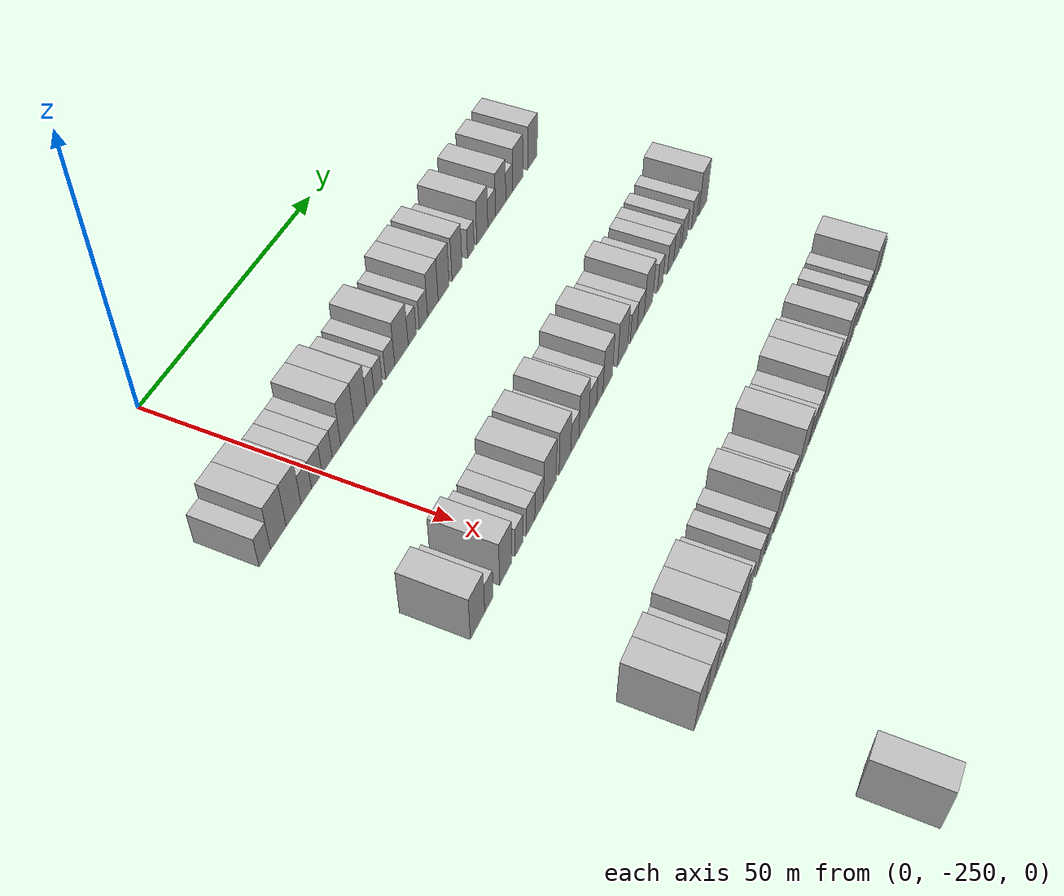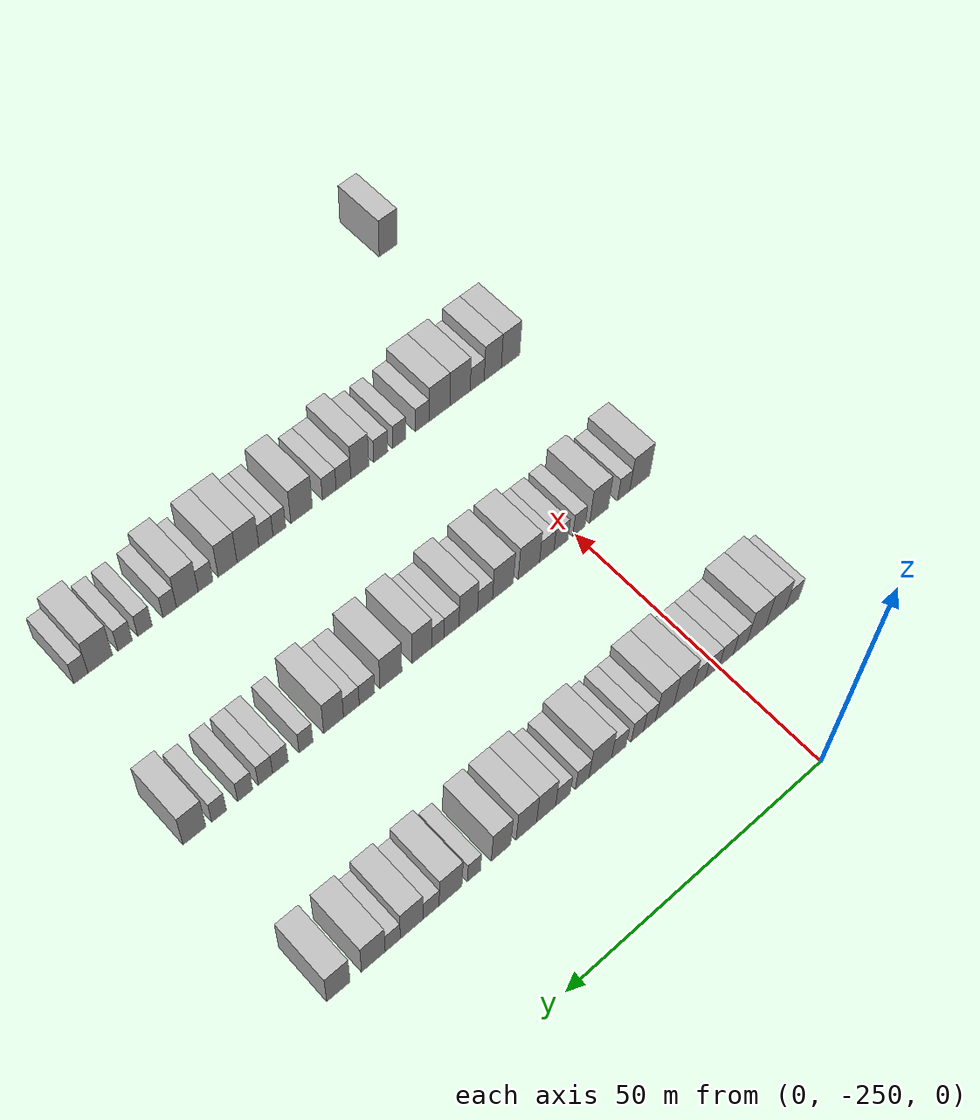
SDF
<sdf version="1.6">
 <world name="default">
  <model name="building_50">
   <static>1</static>
   <pose>25.0000 -265.4910 0 0.000000 0.000000 0.000000</pose>
   <link name="link">
    <pose>0 0 3.00 0 0 0</pose>
    <collision name="collision"><geometry><box><size>10.0000 2.9887 6.0000</size></box></geometry></collision>
    <visual name="visual">
     <cast_shadows>0</cast_shadows>
     <geometry><box><size>10.0000 2.9887 6.0000</size></box></geometry>
     <material>
      <script>
       <uri>model://HANNAS_wall/materials/scripts</uri>
       <uri>model://HANNAS_wall/materials/textures</uri>
       <name>vrc/HANNAS_wall</name>
      </script>
     </material>
    </visual>
   </link>
  </model>
  <model name="building_51">
   <static>1</static>
   <pose>25.0000 -261.9447 0 0.000000 0.000000 0.000000</pose>
   <link name="link">
    <pose>0 0 4.50 0 0 0</pose>
    <collision name="collision"><geometry><box><size>10.0000 4.1038 9.0000</size></box></geometry></collision>
    <visual name="visual">
     <cast_shadows>0</cast_shadows>
     <geometry><box><size>10.0000 4.1038 9.0000</size></box></geometry>
     <material>
      <script>
       <uri>model://HANNAS_wall/materials/scripts</uri>
       <uri>model://HANNAS_wall/materials/textures</uri>
       <name>vrc/HANNAS_wall</name>
      </script>
     </material>
    </visual>
   </link>
  </model>
  <model name="building_52">
   <static>1</static>
   <pose>25.0000 -257.8860 0 0.000000 0.000000 0.000000</pose>
   <link name="link">
    <pose>0 0 4.50 0 0 0</pose>
    <collision name="collision"><geometry><box><size>10.0000 4.0135 9.0000</size></box></geometry></collision>
    <visual name="visual">
     <cast_shadows>0</cast_shadows>
     <geometry><box><size>10.0000 4.0135 9.0000</size></box></geometry>
     <material>
      <script>
       <uri>model://HANNAS_wall/materials/scripts</uri>
       <uri>model://HANNAS_wall/materials/textures</uri>
       <name>vrc/HANNAS_wall</name>
      </script>
     </material>
    </visual>
   </link>
  </model>
  <model name="building_53">
   <static>1</static>
   <pose>25.0000 -254.4358 0 0.000000 0.000000 0.000000</pose>
   <link name="link">
    <pose>0 0 3.00 0 0 0</pose>
    <collision name="collision"><geometry><box><size>10.0000 2.8871 6.0000</size></box></geometry></collision>
    <visual name="visual">
     <cast_shadows>0</cast_shadows>
     <geometry><box><size>10.0000 2.8871 6.0000</size></box></geometry>
     <material>
      <script>
       <uri>model://HANNAS_wall/materials/scripts</uri>
       <uri>model://HANNAS_wall/materials/textures</uri>
       <name>vrc/HANNAS_wall</name>
      </script>
     </material>
    </visual>
   </link>
  </model>
  <model name="building_54">
   <static>1</static>
   <pose>25.0000 -251.5019 0 0.000000 0.000000 0.000000</pose>
   <link name="link">
    <pose>0 0 3.00 0 0 0</pose>
    <collision name="collision"><geometry><box><size>10.0000 2.9807 6.0000</size></box></geometry></collision>
    <visual name="visual">
     <cast_shadows>0</cast_shadows>
     <geometry><box><size>10.0000 2.9807 6.0000</size></box></geometry>
     <material>
      <script>
       <uri>model://HANNAS_wall/materials/scripts</uri>
       <uri>model://HANNAS_wall/materials/textures</uri>
       <name>vrc/HANNAS_wall</name>
      </script>
     </material>
    </visual>
   </link>
  </model>
  <model name="building_55">
   <static>1</static>
   <pose>25.0000 -248.5604 0 0.000000 0.000000 0.000000</pose>
   <link name="link">
    <pose>0 0 3.00 0 0 0</pose>
    <collision name="collision"><geometry><box><size>10.0000 2.9022 6.0000</size></box></geometry></collision>
    <visual name="visual">
     <cast_shadows>0</cast_shadows>
     <geometry><box><size>10.0000 2.9022 6.0000</size></box></geometry>
     <material>
      <script>
       <uri>model://HANNAS_wall/materials/scripts</uri>
       <uri>model://HANNAS_wall/materials/textures</uri>
       <name>vrc/HANNAS_wall</name>
      </script>
     </material>
    </visual>
   </link>
  </model>
  <model name="building_56">
   <static>1</static>
   <pose>25.0000 -245.8790 0 0.000000 0.000000 0.000000</pose>
   <link name="link">
    <pose>0 0 3.00 0 0 0</pose>
    <collision name="collision"><geometry><box><size>10.0000 2.4605 6.0000</size></box></geometry></collision>
    <visual name="visual">
     <cast_shadows>0</cast_shadows>
     <geometry><box><size>10.0000 2.4605 6.0000</size></box></geometry>
     <material>
      <script>
       <uri>model://HANNAS_wall/materials/scripts</uri>
       <uri>model://HANNAS_wall/materials/textures</uri>
       <name>vrc/HANNAS_wall</name>
      </script>
     </material>
    </visual>
   </link>
  </model>
  <model name="building_57">
   <static>1</static>
   <pose>25.0000 -242.6390 0 0.000000 0.000000 0.000000</pose>
   <link name="link">
    <pose>0 0 4.50 0 0 0</pose>
    <collision name="collision"><geometry><box><size>10.0000 4.0194 9.0000</size></box></geometry></collision>
    <visual name="visual">
     <cast_shadows>0</cast_shadows>
     <geometry><box><size>10.0000 4.0194 9.0000</size></box></geometry>
     <material>
      <script>
       <uri>model://HANNAS_wall/materials/scripts</uri>
       <uri>model://HANNAS_wall/materials/textures</uri>
       <name>vrc/HANNAS_wall</name>
      </script>
     </material>
    </visual>
   </link>
  </model>
  <model name="building_58">
   <static>1</static>
   <pose>25.0000 -238.7617 0 0.000000 0.000000 0.000000</pose>
   <link name="link">
    <pose>0 0 4.50 0 0 0</pose>
    <collision name="collision"><geometry><box><size>10.0000 3.7353 9.0000</size></box></geometry></collision>
    <visual name="visual">
     <cast_shadows>0</cast_shadows>
     <geometry><box><size>10.0000 3.7353 9.0000</size></box></geometry>
     <material>
      <script>
       <uri>model://HANNAS_wall/materials/scripts</uri>
       <uri>model://HANNAS_wall/materials/textures</uri>
       <name>vrc/HANNAS_wall</name>
      </script>
     </material>
    </visual>
   </link>
  </model>
  <model name="building_59">
   <static>1</static>
   <pose>25.0000 -235.6898 0 0.000000 0.000000 0.000000</pose>
   <link name="link">
    <pose>0 0 3.00 0 0 0</pose>
    <collision name="collision"><geometry><box><size>10.0000 2.4084 6.0000</size></box></geometry></collision>
    <visual name="visual">
     <cast_shadows>0</cast_shadows>
     <geometry><box><size>10.0000 2.4084 6.0000</size></box></geometry>
     <material>
      <script>
       <uri>model://HANNAS_wall/materials/scripts</uri>
       <uri>model://HANNAS_wall/materials/textures</uri>
       <name>vrc/HANNAS_wall</name>
      </script>
     </material>
    </visual>
   </link>
  </model>
  <model name="building_60">
   <static>1</static>
   <pose>25.0000 -233.2368 0 0.000000 0.000000 0.000000</pose>
   <link name="link">
    <pose>0 0 3.00 0 0 0</pose>
    <collision name="collision"><geometry><box><size>10.0000 2.4976 6.0000</size></box></geometry></collision>
    <visual name="visual">
     <cast_shadows>0</cast_shadows>
     <geometry><box><size>10.0000 2.4976 6.0000</size></box></geometry>
     <material>
      <script>
       <uri>model://HANNAS_wall/materials/scripts</uri>
       <uri>model://HANNAS_wall/materials/textures</uri>
       <name>vrc/HANNAS_wall</name>
      </script>
     </material>
    </visual>
   </link>
  </model>
  <model name="building_61">
   <static>1</static>
   <pose>25.0000 -229.5399 0 0.000000 0.000000 0.000000</pose>
   <link name="link">
    <pose>0 0 3.00 0 0 0</pose>
    <collision name="collision"><geometry><box><size>10.0000 2.8964 6.0000</size></box></geometry></collision>
    <visual name="visual">
     <cast_shadows>0</cast_shadows>
     <geometry><box><size>10.0000 2.8964 6.0000</size></box></geometry>
     <material>
      <script>
       <uri>model://HANNAS_wall/materials/scripts</uri>
       <uri>model://HANNAS_wall/materials/textures</uri>
       <name>vrc/HANNAS_wall</name>
      </script>
     </material>
    </visual>
   </link>
  </model>
  <model name="building_62">
   <static>1</static>
   <pose>25.0000 -225.8926 0 0.000000 0.000000 0.000000</pose>
   <link name="link">
    <pose>0 0 4.50 0 0 0</pose>
    <collision name="collision"><geometry><box><size>10.0000 4.3982 9.0000</size></box></geometry></collision>
    <visual name="visual">
     <cast_shadows>0</cast_shadows>
     <geometry><box><size>10.0000 4.3982 9.0000</size></box></geometry>
     <material>
      <script>
       <uri>model://HANNAS_wall/materials/scripts</uri>
       <uri>model://HANNAS_wall/materials/textures</uri>
       <name>vrc/HANNAS_wall</name>
      </script>
     </material>
    </visual>
   </link>
  </model>
  <model name="building_63">
   <static>1</static>
   <pose>25.0000 -222.3507 0 0.000000 0.000000 0.000000</pose>
   <link name="link">
    <pose>0 0 3.00 0 0 0</pose>
    <collision name="collision"><geometry><box><size>10.0000 2.6857 6.0000</size></box></geometry></collision>
    <visual name="visual">
     <cast_shadows>0</cast_shadows>
     <geometry><box><size>10.0000 2.6857 6.0000</size></box></geometry>
     <material>
      <script>
       <uri>model://HANNAS_wall/materials/scripts</uri>
       <uri>model://HANNAS_wall/materials/textures</uri>
       <name>vrc/HANNAS_wall</name>
      </script>
     </material>
    </visual>
   </link>
  </model>
  <model name="building_64">
   <static>1</static>
   <pose>25.0000 -218.5927 0 0.000000 0.000000 0.000000</pose>
   <link name="link">
    <pose>0 0 3.00 0 0 0</pose>
    <collision name="collision"><geometry><box><size>10.0000 2.8302 6.0000</size></box></geometry></collision>
    <visual name="visual">
     <cast_shadows>0</cast_shadows>
     <geometry><box><size>10.0000 2.8302 6.0000</size></box></geometry>
     <material>
      <script>
       <uri>model://HANNAS_wall/materials/scripts</uri>
       <uri>model://HANNAS_wall/materials/textures</uri>
       <name>vrc/HANNAS_wall</name>
      </script>
     </material>
    </visual>
   </link>
  </model>
  <model name="building_65">
   <static>1</static>
   <pose>25.0000 -215.3506 0 0.000000 0.000000 0.000000</pose>
   <link name="link">
    <pose>0 0 4.50 0 0 0</pose>
    <collision name="collision"><geometry><box><size>10.0000 3.6540 9.0000</size></box></geometry></collision>
    <visual name="visual">
     <cast_shadows>0</cast_shadows>
     <geometry><box><size>10.0000 3.6540 9.0000</size></box></geometry>
     <material>
      <script>
       <uri>model://HANNAS_wall/materials/scripts</uri>
       <uri>model://HANNAS_wall/materials/textures</uri>
       <name>vrc/HANNAS_wall</name>
      </script>
     </material>
    </visual>
   </link>
  </model>
  <model name="building_66">
   <static>1</static>
   <pose>25.0000 -211.5875 0 0.000000 0.000000 0.000000</pose>
   <link name="link">
    <pose>0 0 4.50 0 0 0</pose>
    <collision name="collision"><geometry><box><size>10.0000 3.8723 9.0000</size></box></geometry></collision>
    <visual name="visual">
     <cast_shadows>0</cast_shadows>
     <geometry><box><size>10.0000 3.8723 9.0000</size></box></geometry>
     <material>
      <script>
       <uri>model://HANNAS_wall/materials/scripts</uri>
       <uri>model://HANNAS_wall/materials/textures</uri>
       <name>vrc/HANNAS_wall</name>
      </script>
     </material>
    </visual>
   </link>
  </model>
  <model name="building_67">
   <static>1</static>
   <pose>25.0000 -206.8315 0 0.000000 0.000000 0.000000</pose>
   <link name="link">
    <pose>0 0 4.50 0 0 0</pose>
    <collision name="collision"><geometry><box><size>10.0000 3.6397 9.0000</size></box></geometry></collision>
    <visual name="visual">
     <cast_shadows>0</cast_shadows>
     <geometry><box><size>10.0000 3.6397 9.0000</size></box></geometry>
     <material>
      <script>
       <uri>model://HANNAS_wall/materials/scripts</uri>
       <uri>model://HANNAS_wall/materials/textures</uri>
       <name>vrc/HANNAS_wall</name>
      </script>
     </material>
    </visual>
   </link>
  </model>
  <model name="building_68">
   <static>1</static>
   <pose>25.0000 -201.7944 0 0.000000 0.000000 0.000000</pose>
   <link name="link">
    <pose>0 0 3.00 0 0 0</pose>
    <collision name="collision"><geometry><box><size>10.0000 2.4345 6.0000</size></box></geometry></collision>
    <visual name="visual">
     <cast_shadows>0</cast_shadows>
     <geometry><box><size>10.0000 2.4345 6.0000</size></box></geometry>
     <material>
      <script>
       <uri>model://HANNAS_wall/materials/scripts</uri>
       <uri>model://HANNAS_wall/materials/textures</uri>
       <name>vrc/HANNAS_wall</name>
      </script>
     </material>
    </visual>
   </link>
  </model>
  <model name="building_69">
   <static>1</static>
   <pose>25.0000 -197.4834 0 0.000000 0.000000 0.000000</pose>
   <link name="link">
    <pose>0 0 4.50 0 0 0</pose>
    <collision name="collision"><geometry><box><size>10.0000 4.1875 9.0000</size></box></geometry></collision>
    <visual name="visual">
     <cast_shadows>0</cast_shadows>
     <geometry><box><size>10.0000 4.1875 9.0000</size></box></geometry>
     <material>
      <script>
       <uri>model://HANNAS_wall/materials/scripts</uri>
       <uri>model://HANNAS_wall/materials/textures</uri>
       <name>vrc/HANNAS_wall</name>
      </script>
     </material>
    </visual>
   </link>
  </model>
  <model name="building_70">
   <static>1</static>
   <pose>25.0000 -193.9074 0 0.000000 0.000000 0.000000</pose>
   <link name="link">
    <pose>0 0 3.00 0 0 0</pose>
    <collision name="collision"><geometry><box><size>10.0000 2.9646 6.0000</size></box></geometry></collision>
    <visual name="visual">
     <cast_shadows>0</cast_shadows>
     <geometry><box><size>10.0000 2.9646 6.0000</size></box></geometry>
     <material>
      <script>
       <uri>model://HANNAS_wall/materials/scripts</uri>
       <uri>model://HANNAS_wall/materials/textures</uri>
       <name>vrc/HANNAS_wall</name>
      </script>
     </material>
    </visual>
   </link>
  </model>
  <model name="building_71">
   <static>1</static>
   <pose>25.0000 -190.4052 0 0.000000 0.000000 0.000000</pose>
   <link name="link">
    <pose>0 0 4.50 0 0 0</pose>
    <collision name="collision"><geometry><box><size>10.0000 4.0399 9.0000</size></box></geometry></collision>
    <visual name="visual">
     <cast_shadows>0</cast_shadows>
     <geometry><box><size>10.0000 4.0399 9.0000</size></box></geometry>
     <material>
      <script>
       <uri>model://HANNAS_wall/materials/scripts</uri>
       <uri>model://HANNAS_wall/materials/textures</uri>
       <name>vrc/HANNAS_wall</name>
      </script>
     </material>
    </visual>
   </link>
  </model>
  <model name="building_72">
   <static>1</static>
   <pose>25.0000 -187.0471 0 0.000000 0.000000 0.000000</pose>
   <link name="link">
    <pose>0 0 3.00 0 0 0</pose>
    <collision name="collision"><geometry><box><size>10.0000 2.6762 6.0000</size></box></geometry></collision>
    <visual name="visual">
     <cast_shadows>0</cast_shadows>
     <geometry><box><size>10.0000 2.6762 6.0000</size></box></geometry>
     <material>
      <script>
       <uri>model://HANNAS_wall/materials/scripts</uri>
       <uri>model://HANNAS_wall/materials/textures</uri>
       <name>vrc/HANNAS_wall</name>
      </script>
     </material>
    </visual>
   </link>
  </model>
  <model name="building_73">
   <static>1</static>
   <pose>25.0000 -183.6173 0 0.000000 0.000000 0.000000</pose>
   <link name="link">
    <pose>0 0 4.50 0 0 0</pose>
    <collision name="collision"><geometry><box><size>10.0000 4.1834 9.0000</size></box></geometry></collision>
    <visual name="visual">
     <cast_shadows>0</cast_shadows>
     <geometry><box><size>10.0000 4.1834 9.0000</size></box></geometry>
     <material>
      <script>
       <uri>model://HANNAS_wall/materials/scripts</uri>
       <uri>model://HANNAS_wall/materials/textures</uri>
       <name>vrc/HANNAS_wall</name>
      </script>
     </material>
    </visual>
   </link>
  </model>
  <model name="building_74">
   <static>1</static>
   <pose>25.0000 -177.5048 0 0.000000 0.000000 0.000000</pose>
   <link name="link">
    <pose>0 0 4.50 0 0 0</pose>
    <collision name="collision"><geometry><box><size>10.0000 4.0415 9.0000</size></box></geometry></collision>
    <visual name="visual">
     <cast_shadows>0</cast_shadows>
     <geometry><box><size>10.0000 4.0415 9.0000</size></box></geometry>
     <material>
      <script>
       <uri>model://HANNAS_wall/materials/scripts</uri>
       <uri>model://HANNAS_wall/materials/textures</uri>
       <name>vrc/HANNAS_wall</name>
      </script>
     </material>
    </visual>
   </link>
  </model>
  <model name="building_267">
   <static>1</static>
   <pose>55.0000 -263.7261 0 0.000000 0.000000 0.000000</pose>
   <link name="link">
    <pose>0 0 4.50 0 0 0</pose>
    <collision name="collision"><geometry><box><size>10.0000 4.3050 9.0000</size></box></geometry></collision>
    <visual name="visual">
     <cast_shadows>0</cast_shadows>
     <geometry><box><size>10.0000 4.3050 9.0000</size></box></geometry>
     <material>
      <script>
       <uri>model://HANNAS_wall/materials/scripts</uri>
       <uri>model://HANNAS_wall/materials/textures</uri>
       <name>vrc/HANNAS_wall</name>
      </script>
     </material>
    </visual>
   </link>
  </model>
  <model name="building_268">
   <static>1</static>
   <pose>55.0000 -260.2630 0 0.000000 0.000000 0.000000</pose>
   <link name="link">
    <pose>0 0 3.00 0 0 0</pose>
    <collision name="collision"><geometry><box><size>10.0000 2.6212 6.0000</size></box></geometry></collision>
    <visual name="visual">
     <cast_shadows>0</cast_shadows>
     <geometry><box><size>10.0000 2.6212 6.0000</size></box></geometry>
     <material>
      <script>
       <uri>model://HANNAS_wall/materials/scripts</uri>
       <uri>model://HANNAS_wall/materials/textures</uri>
       <name>vrc/HANNAS_wall</name>
      </script>
     </material>
    </visual>
   </link>
  </model>
  <model name="building_269">
   <static>1</static>
   <pose>55.0000 -254.9855 0 0.000000 0.000000 0.000000</pose>
   <link name="link">
    <pose>0 0 4.50 0 0 0</pose>
    <collision name="collision"><geometry><box><size>10.0000 3.9338 9.0000</size></box></geometry></collision>
    <visual name="visual">
     <cast_shadows>0</cast_shadows>
     <geometry><box><size>10.0000 3.9338 9.0000</size></box></geometry>
     <material>
      <script>
       <uri>model://HANNAS_wall/materials/scripts</uri>
       <uri>model://HANNAS_wall/materials/textures</uri>
       <name>vrc/HANNAS_wall</name>
      </script>
     </material>
    </visual>
   </link>
  </model>
  <model name="building_270">
   <static>1</static>
   <pose>55.0000 -250.7332 0 0.000000 0.000000 0.000000</pose>
   <link name="link">
    <pose>0 0 3.00 0 0 0</pose>
    <collision name="collision"><geometry><box><size>10.0000 2.5709 6.0000</size></box></geometry></collision>
    <visual name="visual">
     <cast_shadows>0</cast_shadows>
     <geometry><box><size>10.0000 2.5709 6.0000</size></box></geometry>
     <material>
      <script>
       <uri>model://HANNAS_wall/materials/scripts</uri>
       <uri>model://HANNAS_wall/materials/textures</uri>
       <name>vrc/HANNAS_wall</name>
      </script>
     </material>
    </visual>
   </link>
  </model>
  <model name="building_271">
   <static>1</static>
   <pose>55.0000 -246.9856 0 0.000000 0.000000 0.000000</pose>
   <link name="link">
    <pose>0 0 3.00 0 0 0</pose>
    <collision name="collision"><geometry><box><size>10.0000 2.9243 6.0000</size></box></geometry></collision>
    <visual name="visual">
     <cast_shadows>0</cast_shadows>
     <geometry><box><size>10.0000 2.9243 6.0000</size></box></geometry>
     <material>
      <script>
       <uri>model://HANNAS_wall/materials/scripts</uri>
       <uri>model://HANNAS_wall/materials/textures</uri>
       <name>vrc/HANNAS_wall</name>
      </script>
     </material>
    </visual>
   </link>
  </model>
  <model name="building_272">
   <static>1</static>
   <pose>55.0000 -244.0368 0 0.000000 0.000000 0.000000</pose>
   <link name="link">
    <pose>0 0 3.00 0 0 0</pose>
    <collision name="collision"><geometry><box><size>10.0000 2.9733 6.0000</size></box></geometry></collision>
    <visual name="visual">
     <cast_shadows>0</cast_shadows>
     <geometry><box><size>10.0000 2.9733 6.0000</size></box></geometry>
     <material>
      <script>
       <uri>model://HANNAS_wall/materials/scripts</uri>
       <uri>model://HANNAS_wall/materials/textures</uri>
       <name>vrc/HANNAS_wall</name>
      </script>
     </material>
    </visual>
   </link>
  </model>
  <model name="building_273">
   <static>1</static>
   <pose>55.0000 -240.3562 0 0.000000 0.000000 0.000000</pose>
   <link name="link">
    <pose>0 0 4.50 0 0 0</pose>
    <collision name="collision"><geometry><box><size>10.0000 4.3878 9.0000</size></box></geometry></collision>
    <visual name="visual">
     <cast_shadows>0</cast_shadows>
     <geometry><box><size>10.0000 4.3878 9.0000</size></box></geometry>
     <material>
      <script>
       <uri>model://HANNAS_wall/materials/scripts</uri>
       <uri>model://HANNAS_wall/materials/textures</uri>
       <name>vrc/HANNAS_wall</name>
      </script>
     </material>
    </visual>
   </link>
  </model>
  <model name="building_274">
   <static>1</static>
   <pose>55.0000 -235.0624 0 0.000000 0.000000 0.000000</pose>
   <link name="link">
    <pose>0 0 4.50 0 0 0</pose>
    <collision name="collision"><geometry><box><size>10.0000 4.1998 9.0000</size></box></geometry></collision>
    <visual name="visual">
     <cast_shadows>0</cast_shadows>
     <geometry><box><size>10.0000 4.1998 9.0000</size></box></geometry>
     <material>
      <script>
       <uri>model://HANNAS_wall/materials/scripts</uri>
       <uri>model://HANNAS_wall/materials/textures</uri>
       <name>vrc/HANNAS_wall</name>
      </script>
     </material>
    </visual>
   </link>
  </model>
  <model name="building_275">
   <static>1</static>
   <pose>55.0000 -231.4702 0 0.000000 0.000000 0.000000</pose>
   <link name="link">
    <pose>0 0 3.00 0 0 0</pose>
    <collision name="collision"><geometry><box><size>10.0000 2.9846 6.0000</size></box></geometry></collision>
    <visual name="visual">
     <cast_shadows>0</cast_shadows>
     <geometry><box><size>10.0000 2.9846 6.0000</size></box></geometry>
     <material>
      <script>
       <uri>model://HANNAS_wall/materials/scripts</uri>
       <uri>model://HANNAS_wall/materials/textures</uri>
       <name>vrc/HANNAS_wall</name>
      </script>
     </material>
    </visual>
   </link>
  </model>
  <model name="building_276">
   <static>1</static>
   <pose>55.0000 -228.1187 0 0.000000 0.000000 0.000000</pose>
   <link name="link">
    <pose>0 0 4.50 0 0 0</pose>
    <collision name="collision"><geometry><box><size>10.0000 3.7184 9.0000</size></box></geometry></collision>
    <visual name="visual">
     <cast_shadows>0</cast_shadows>
     <geometry><box><size>10.0000 3.7184 9.0000</size></box></geometry>
     <material>
      <script>
       <uri>model://HANNAS_wall/materials/scripts</uri>
       <uri>model://HANNAS_wall/materials/textures</uri>
       <name>vrc/HANNAS_wall</name>
      </script>
     </material>
    </visual>
   </link>
  </model>
  <model name="building_277">
   <static>1</static>
   <pose>55.0000 -224.7880 0 0.000000 0.000000 0.000000</pose>
   <link name="link">
    <pose>0 0 3.00 0 0 0</pose>
    <collision name="collision"><geometry><box><size>10.0000 2.9431 6.0000</size></box></geometry></collision>
    <visual name="visual">
     <cast_shadows>0</cast_shadows>
     <geometry><box><size>10.0000 2.9431 6.0000</size></box></geometry>
     <material>
      <script>
       <uri>model://HANNAS_wall/materials/scripts</uri>
       <uri>model://HANNAS_wall/materials/textures</uri>
       <name>vrc/HANNAS_wall</name>
      </script>
     </material>
    </visual>
   </link>
  </model>
  <model name="building_278">
   <static>1</static>
   <pose>55.0000 -222.0915 0 0.000000 0.000000 0.000000</pose>
   <link name="link">
    <pose>0 0 3.00 0 0 0</pose>
    <collision name="collision"><geometry><box><size>10.0000 2.4499 6.0000</size></box></geometry></collision>
    <visual name="visual">
     <cast_shadows>0</cast_shadows>
     <geometry><box><size>10.0000 2.4499 6.0000</size></box></geometry>
     <material>
      <script>
       <uri>model://HANNAS_wall/materials/scripts</uri>
       <uri>model://HANNAS_wall/materials/textures</uri>
       <name>vrc/HANNAS_wall</name>
      </script>
     </material>
    </visual>
   </link>
  </model>
  <model name="building_279">
   <static>1</static>
   <pose>55.0000 -218.9821 0 0.000000 0.000000 0.000000</pose>
   <link name="link">
    <pose>0 0 4.50 0 0 0</pose>
    <collision name="collision"><geometry><box><size>10.0000 3.7690 9.0000</size></box></geometry></collision>
    <visual name="visual">
     <cast_shadows>0</cast_shadows>
     <geometry><box><size>10.0000 3.7690 9.0000</size></box></geometry>
     <material>
      <script>
       <uri>model://HANNAS_wall/materials/scripts</uri>
       <uri>model://HANNAS_wall/materials/textures</uri>
       <name>vrc/HANNAS_wall</name>
      </script>
     </material>
    </visual>
   </link>
  </model>
  <model name="building_280">
   <static>1</static>
   <pose>55.0000 -212.9957 0 0.000000 0.000000 0.000000</pose>
   <link name="link">
    <pose>0 0 4.50 0 0 0</pose>
    <collision name="collision"><geometry><box><size>10.0000 4.2037 9.0000</size></box></geometry></collision>
    <visual name="visual">
     <cast_shadows>0</cast_shadows>
     <geometry><box><size>10.0000 4.2037 9.0000</size></box></geometry>
     <material>
      <script>
       <uri>model://HANNAS_wall/materials/scripts</uri>
       <uri>model://HANNAS_wall/materials/textures</uri>
       <name>vrc/HANNAS_wall</name>
      </script>
     </material>
    </visual>
   </link>
  </model>
  <model name="building_281">
   <static>1</static>
   <pose>55.0000 -208.4330 0 0.000000 0.000000 0.000000</pose>
   <link name="link">
    <pose>0 0 3.00 0 0 0</pose>
    <collision name="collision"><geometry><box><size>10.0000 2.9218 6.0000</size></box></geometry></collision>
    <visual name="visual">
     <cast_shadows>0</cast_shadows>
     <geometry><box><size>10.0000 2.9218 6.0000</size></box></geometry>
     <material>
      <script>
       <uri>model://HANNAS_wall/materials/scripts</uri>
       <uri>model://HANNAS_wall/materials/textures</uri>
       <name>vrc/HANNAS_wall</name>
      </script>
     </material>
    </visual>
   </link>
  </model>
  <model name="building_282">
   <static>1</static>
   <pose>55.0000 -205.4893 0 0.000000 0.000000 0.000000</pose>
   <link name="link">
    <pose>0 0 3.00 0 0 0</pose>
    <collision name="collision"><geometry><box><size>10.0000 2.9655 6.0000</size></box></geometry></collision>
    <visual name="visual">
     <cast_shadows>0</cast_shadows>
     <geometry><box><size>10.0000 2.9655 6.0000</size></box></geometry>
     <material>
      <script>
       <uri>model://HANNAS_wall/materials/scripts</uri>
       <uri>model://HANNAS_wall/materials/textures</uri>
       <name>vrc/HANNAS_wall</name>
      </script>
     </material>
    </visual>
   </link>
  </model>
  <model name="building_283">
   <static>1</static>
   <pose>55.0000 -202.1542 0 0.000000 0.000000 0.000000</pose>
   <link name="link">
    <pose>0 0 4.50 0 0 0</pose>
    <collision name="collision"><geometry><box><size>10.0000 3.7046 9.0000</size></box></geometry></collision>
    <visual name="visual">
     <cast_shadows>0</cast_shadows>
     <geometry><box><size>10.0000 3.7046 9.0000</size></box></geometry>
     <material>
      <script>
       <uri>model://HANNAS_wall/materials/scripts</uri>
       <uri>model://HANNAS_wall/materials/textures</uri>
       <name>vrc/HANNAS_wall</name>
      </script>
     </material>
    </visual>
   </link>
  </model>
  <model name="building_284">
   <static>1</static>
   <pose>55.0000 -197.0235 0 0.000000 0.000000 0.000000</pose>
   <link name="link">
    <pose>0 0 3.00 0 0 0</pose>
    <collision name="collision"><geometry><box><size>10.0000 2.5568 6.0000</size></box></geometry></collision>
    <visual name="visual">
     <cast_shadows>0</cast_shadows>
     <geometry><box><size>10.0000 2.5568 6.0000</size></box></geometry>
     <material>
      <script>
       <uri>model://HANNAS_wall/materials/scripts</uri>
       <uri>model://HANNAS_wall/materials/textures</uri>
       <name>vrc/HANNAS_wall</name>
      </script>
     </material>
    </visual>
   </link>
  </model>
  <model name="building_285">
   <static>1</static>
   <pose>55.0000 -192.3243 0 0.000000 0.000000 0.000000</pose>
   <link name="link">
    <pose>0 0 3.00 0 0 0</pose>
    <collision name="collision"><geometry><box><size>10.0000 2.8416 6.0000</size></box></geometry></collision>
    <visual name="visual">
     <cast_shadows>0</cast_shadows>
     <geometry><box><size>10.0000 2.8416 6.0000</size></box></geometry>
     <material>
      <script>
       <uri>model://HANNAS_wall/materials/scripts</uri>
       <uri>model://HANNAS_wall/materials/textures</uri>
       <name>vrc/HANNAS_wall</name>
      </script>
     </material>
    </visual>
   </link>
  </model>
  <model name="building_286">
   <static>1</static>
   <pose>55.0000 -189.5989 0 0.000000 0.000000 0.000000</pose>
   <link name="link">
    <pose>0 0 3.00 0 0 0</pose>
    <collision name="collision"><geometry><box><size>10.0000 2.6091 6.0000</size></box></geometry></collision>
    <visual name="visual">
     <cast_shadows>0</cast_shadows>
     <geometry><box><size>10.0000 2.6091 6.0000</size></box></geometry>
     <material>
      <script>
       <uri>model://HANNAS_wall/materials/scripts</uri>
       <uri>model://HANNAS_wall/materials/textures</uri>
       <name>vrc/HANNAS_wall</name>
      </script>
     </material>
    </visual>
   </link>
  </model>
  <model name="building_287">
   <static>1</static>
   <pose>55.0000 -185.9409 0 0.000000 0.000000 0.000000</pose>
   <link name="link">
    <pose>0 0 3.00 0 0 0</pose>
    <collision name="collision"><geometry><box><size>10.0000 2.7070 6.0000</size></box></geometry></collision>
    <visual name="visual">
     <cast_shadows>0</cast_shadows>
     <geometry><box><size>10.0000 2.7070 6.0000</size></box></geometry>
     <material>
      <script>
       <uri>model://HANNAS_wall/materials/scripts</uri>
       <uri>model://HANNAS_wall/materials/textures</uri>
       <name>vrc/HANNAS_wall</name>
      </script>
     </material>
    </visual>
   </link>
  </model>
  <model name="building_288">
   <static>1</static>
   <pose>55.0000 -181.2739 0 0.000000 0.000000 0.000000</pose>
   <link name="link">
    <pose>0 0 3.00 0 0 0</pose>
    <collision name="collision"><geometry><box><size>10.0000 2.6270 6.0000</size></box></geometry></collision>
    <visual name="visual">
     <cast_shadows>0</cast_shadows>
     <geometry><box><size>10.0000 2.6270 6.0000</size></box></geometry>
     <material>
      <script>
       <uri>model://HANNAS_wall/materials/scripts</uri>
       <uri>model://HANNAS_wall/materials/textures</uri>
       <name>vrc/HANNAS_wall</name>
      </script>
     </material>
    </visual>
   </link>
  </model>
  <model name="building_289">
   <static>1</static>
   <pose>55.0000 -176.9408 0 0.000000 0.000000 0.000000</pose>
   <link name="link">
    <pose>0 0 4.50 0 0 0</pose>
    <collision name="collision"><geometry><box><size>10.0000 4.0393 9.0000</size></box></geometry></collision>
    <visual name="visual">
     <cast_shadows>0</cast_shadows>
     <geometry><box><size>10.0000 4.0393 9.0000</size></box></geometry>
     <material>
      <script>
       <uri>model://HANNAS_wall/materials/scripts</uri>
       <uri>model://HANNAS_wall/materials/textures</uri>
       <name>vrc/HANNAS_wall</name>
      </script>
     </material>
    </visual>
   </link>
  </model>
  <model name="building_498">
   <static>1</static>
   <pose>85.0000 -264.6097 0 0.000000 0.000000 0.000000</pose>
   <link name="link">
    <pose>0 0 4.50 0 0 0</pose>
    <collision name="collision"><geometry><box><size>10.0000 4.0072 9.0000</size></box></geometry></collision>
    <visual name="visual">
     <cast_shadows>0</cast_shadows>
     <geometry><box><size>10.0000 4.0072 9.0000</size></box></geometry>
     <material>
      <script>
       <uri>model://HANNAS_wall/materials/scripts</uri>
       <uri>model://HANNAS_wall/materials/textures</uri>
       <name>vrc/HANNAS_wall</name>
      </script>
     </material>
    </visual>
   </link>
  </model>
  <model name="building_499">
   <static>1</static>
   <pose>85.0000 -260.7548 0 0.000000 0.000000 0.000000</pose>
   <link name="link">
    <pose>0 0 4.50 0 0 0</pose>
    <collision name="collision"><geometry><box><size>10.0000 3.7027 9.0000</size></box></geometry></collision>
    <visual name="visual">
     <cast_shadows>0</cast_shadows>
     <geometry><box><size>10.0000 3.7027 9.0000</size></box></geometry>
     <material>
      <script>
       <uri>model://HANNAS_wall/materials/scripts</uri>
       <uri>model://HANNAS_wall/materials/textures</uri>
       <name>vrc/HANNAS_wall</name>
      </script>
     </material>
    </visual>
   </link>
  </model>
  <model name="building_500">
   <static>1</static>
   <pose>85.0000 -257.4041 0 0.000000 0.000000 0.000000</pose>
   <link name="link">
    <pose>0 0 3.00 0 0 0</pose>
    <collision name="collision"><geometry><box><size>10.0000 2.9988 6.0000</size></box></geometry></collision>
    <visual name="visual">
     <cast_shadows>0</cast_shadows>
     <geometry><box><size>10.0000 2.9988 6.0000</size></box></geometry>
     <material>
      <script>
       <uri>model://HANNAS_wall/materials/scripts</uri>
       <uri>model://HANNAS_wall/materials/textures</uri>
       <name>vrc/HANNAS_wall</name>
      </script>
     </material>
    </visual>
   </link>
  </model>
  <model name="building_501">
   <static>1</static>
   <pose>85.0000 -253.7435 0 0.000000 0.000000 0.000000</pose>
   <link name="link">
    <pose>0 0 4.50 0 0 0</pose>
    <collision name="collision"><geometry><box><size>10.0000 4.3224 9.0000</size></box></geometry></collision>
    <visual name="visual">
     <cast_shadows>0</cast_shadows>
     <geometry><box><size>10.0000 4.3224 9.0000</size></box></geometry>
     <material>
      <script>
       <uri>model://HANNAS_wall/materials/scripts</uri>
       <uri>model://HANNAS_wall/materials/textures</uri>
       <name>vrc/HANNAS_wall</name>
      </script>
     </material>
    </visual>
   </link>
  </model>
  <model name="building_502">
   <static>1</static>
   <pose>85.0000 -249.3909 0 0.000000 0.000000 0.000000</pose>
   <link name="link">
    <pose>0 0 4.50 0 0 0</pose>
    <collision name="collision"><geometry><box><size>10.0000 4.3829 9.0000</size></box></geometry></collision>
    <visual name="visual">
     <cast_shadows>0</cast_shadows>
     <geometry><box><size>10.0000 4.3829 9.0000</size></box></geometry>
     <material>
      <script>
       <uri>model://HANNAS_wall/materials/scripts</uri>
       <uri>model://HANNAS_wall/materials/textures</uri>
       <name>vrc/HANNAS_wall</name>
      </script>
     </material>
    </visual>
   </link>
  </model>
  <model name="building_503">
   <static>1</static>
   <pose>85.0000 -245.7815 0 0.000000 0.000000 0.000000</pose>
   <link name="link">
    <pose>0 0 3.00 0 0 0</pose>
    <collision name="collision"><geometry><box><size>10.0000 2.8359 6.0000</size></box></geometry></collision>
    <visual name="visual">
     <cast_shadows>0</cast_shadows>
     <geometry><box><size>10.0000 2.8359 6.0000</size></box></geometry>
     <material>
      <script>
       <uri>model://HANNAS_wall/materials/scripts</uri>
       <uri>model://HANNAS_wall/materials/textures</uri>
       <name>vrc/HANNAS_wall</name>
      </script>
     </material>
    </visual>
   </link>
  </model>
  <model name="building_504">
   <static>1</static>
   <pose>85.0000 -240.9975 0 0.000000 0.000000 0.000000</pose>
   <link name="link">
    <pose>0 0 3.00 0 0 0</pose>
    <collision name="collision"><geometry><box><size>10.0000 2.7322 6.0000</size></box></geometry></collision>
    <visual name="visual">
     <cast_shadows>0</cast_shadows>
     <geometry><box><size>10.0000 2.7322 6.0000</size></box></geometry>
     <material>
      <script>
       <uri>model://HANNAS_wall/materials/scripts</uri>
       <uri>model://HANNAS_wall/materials/textures</uri>
       <name>vrc/HANNAS_wall</name>
      </script>
     </material>
    </visual>
   </link>
  </model>
  <model name="building_505">
   <static>1</static>
   <pose>85.0000 -237.1853 0 0.000000 0.000000 0.000000</pose>
   <link name="link">
    <pose>0 0 3.00 0 0 0</pose>
    <collision name="collision"><geometry><box><size>10.0000 2.8923 6.0000</size></box></geometry></collision>
    <visual name="visual">
     <cast_shadows>0</cast_shadows>
     <geometry><box><size>10.0000 2.8923 6.0000</size></box></geometry>
     <material>
      <script>
       <uri>model://HANNAS_wall/materials/scripts</uri>
       <uri>model://HANNAS_wall/materials/textures</uri>
       <name>vrc/HANNAS_wall</name>
      </script>
     </material>
    </visual>
   </link>
  </model>
  <model name="building_506">
   <static>1</static>
   <pose>85.0000 -232.9215 0 0.000000 0.000000 0.000000</pose>
   <link name="link">
    <pose>0 0 4.50 0 0 0</pose>
    <collision name="collision"><geometry><box><size>10.0000 3.6353 9.0000</size></box></geometry></collision>
    <visual name="visual">
     <cast_shadows>0</cast_shadows>
     <geometry><box><size>10.0000 3.6353 9.0000</size></box></geometry>
     <material>
      <script>
       <uri>model://HANNAS_wall/materials/scripts</uri>
       <uri>model://HANNAS_wall/materials/textures</uri>
       <name>vrc/HANNAS_wall</name>
      </script>
     </material>
    </visual>
   </link>
  </model>
  <model name="building_507">
   <static>1</static>
   <pose>85.0000 -229.6267 0 0.000000 0.000000 0.000000</pose>
   <link name="link">
    <pose>0 0 3.00 0 0 0</pose>
    <collision name="collision"><geometry><box><size>10.0000 2.9542 6.0000</size></box></geometry></collision>
    <visual name="visual">
     <cast_shadows>0</cast_shadows>
     <geometry><box><size>10.0000 2.9542 6.0000</size></box></geometry>
     <material>
      <script>
       <uri>model://HANNAS_wall/materials/scripts</uri>
       <uri>model://HANNAS_wall/materials/textures</uri>
       <name>vrc/HANNAS_wall</name>
      </script>
     </material>
    </visual>
   </link>
  </model>
  <model name="building_508">
   <static>1</static>
   <pose>85.0000 -226.7776 0 0.000000 0.000000 0.000000</pose>
   <link name="link">
    <pose>0 0 3.00 0 0 0</pose>
    <collision name="collision"><geometry><box><size>10.0000 2.7440 6.0000</size></box></geometry></collision>
    <visual name="visual">
     <cast_shadows>0</cast_shadows>
     <geometry><box><size>10.0000 2.7440 6.0000</size></box></geometry>
     <material>
      <script>
       <uri>model://HANNAS_wall/materials/scripts</uri>
       <uri>model://HANNAS_wall/materials/textures</uri>
       <name>vrc/HANNAS_wall</name>
      </script>
     </material>
    </visual>
   </link>
  </model>
  <model name="building_509">
   <static>1</static>
   <pose>85.0000 -221.2762 0 0.000000 0.000000 0.000000</pose>
   <link name="link">
    <pose>0 0 4.50 0 0 0</pose>
    <collision name="collision"><geometry><box><size>10.0000 4.2588 9.0000</size></box></geometry></collision>
    <visual name="visual">
     <cast_shadows>0</cast_shadows>
     <geometry><box><size>10.0000 4.2588 9.0000</size></box></geometry>
     <material>
      <script>
       <uri>model://HANNAS_wall/materials/scripts</uri>
       <uri>model://HANNAS_wall/materials/textures</uri>
       <name>vrc/HANNAS_wall</name>
      </script>
     </material>
    </visual>
   </link>
  </model>
  <model name="building_510">
   <static>1</static>
   <pose>85.0000 -216.9103 0 0.000000 0.000000 0.000000</pose>
   <link name="link">
    <pose>0 0 3.00 0 0 0</pose>
    <collision name="collision"><geometry><box><size>10.0000 2.4729 6.0000</size></box></geometry></collision>
    <visual name="visual">
     <cast_shadows>0</cast_shadows>
     <geometry><box><size>10.0000 2.4729 6.0000</size></box></geometry>
     <material>
      <script>
       <uri>model://HANNAS_wall/materials/scripts</uri>
       <uri>model://HANNAS_wall/materials/textures</uri>
       <name>vrc/HANNAS_wall</name>
      </script>
     </material>
    </visual>
   </link>
  </model>
  <model name="building_511">
   <static>1</static>
   <pose>85.0000 -214.2903 0 0.000000 0.000000 0.000000</pose>
   <link name="link">
    <pose>0 0 3.00 0 0 0</pose>
    <collision name="collision"><geometry><box><size>10.0000 2.7672 6.0000</size></box></geometry></collision>
    <visual name="visual">
     <cast_shadows>0</cast_shadows>
     <geometry><box><size>10.0000 2.7672 6.0000</size></box></geometry>
     <material>
      <script>
       <uri>model://HANNAS_wall/materials/scripts</uri>
       <uri>model://HANNAS_wall/materials/textures</uri>
       <name>vrc/HANNAS_wall</name>
      </script>
     </material>
    </visual>
   </link>
  </model>
  <model name="building_512">
   <static>1</static>
   <pose>85.0000 -210.8014 0 0.000000 0.000000 0.000000</pose>
   <link name="link">
    <pose>0 0 4.50 0 0 0</pose>
    <collision name="collision"><geometry><box><size>10.0000 4.2105 9.0000</size></box></geometry></collision>
    <visual name="visual">
     <cast_shadows>0</cast_shadows>
     <geometry><box><size>10.0000 4.2105 9.0000</size></box></geometry>
     <material>
      <script>
       <uri>model://HANNAS_wall/materials/scripts</uri>
       <uri>model://HANNAS_wall/materials/textures</uri>
       <name>vrc/HANNAS_wall</name>
      </script>
     </material>
    </visual>
   </link>
  </model>
  <model name="building_513">
   <static>1</static>
   <pose>85.0000 -206.8841 0 0.000000 0.000000 0.000000</pose>
   <link name="link">
    <pose>0 0 4.50 0 0 0</pose>
    <collision name="collision"><geometry><box><size>10.0000 3.6242 9.0000</size></box></geometry></collision>
    <visual name="visual">
     <cast_shadows>0</cast_shadows>
     <geometry><box><size>10.0000 3.6242 9.0000</size></box></geometry>
     <material>
      <script>
       <uri>model://HANNAS_wall/materials/scripts</uri>
       <uri>model://HANNAS_wall/materials/textures</uri>
       <name>vrc/HANNAS_wall</name>
      </script>
     </material>
    </visual>
   </link>
  </model>
  <model name="building_514">
   <static>1</static>
   <pose>85.0000 -202.6693 0 0.000000 0.000000 0.000000</pose>
   <link name="link">
    <pose>0 0 3.00 0 0 0</pose>
    <collision name="collision"><geometry><box><size>10.0000 2.8052 6.0000</size></box></geometry></collision>
    <visual name="visual">
     <cast_shadows>0</cast_shadows>
     <geometry><box><size>10.0000 2.8052 6.0000</size></box></geometry>
     <material>
      <script>
       <uri>model://HANNAS_wall/materials/scripts</uri>
       <uri>model://HANNAS_wall/materials/textures</uri>
       <name>vrc/HANNAS_wall</name>
      </script>
     </material>
    </visual>
   </link>
  </model>
  <model name="building_515">
   <static>1</static>
   <pose>85.0000 -199.2394 0 0.000000 0.000000 0.000000</pose>
   <link name="link">
    <pose>0 0 4.50 0 0 0</pose>
    <collision name="collision"><geometry><box><size>10.0000 4.0547 9.0000</size></box></geometry></collision>
    <visual name="visual">
     <cast_shadows>0</cast_shadows>
     <geometry><box><size>10.0000 4.0547 9.0000</size></box></geometry>
     <material>
      <script>
       <uri>model://HANNAS_wall/materials/scripts</uri>
       <uri>model://HANNAS_wall/materials/textures</uri>
       <name>vrc/HANNAS_wall</name>
      </script>
     </material>
    </visual>
   </link>
  </model>
  <model name="building_516">
   <static>1</static>
   <pose>85.0000 -195.9584 0 0.000000 0.000000 0.000000</pose>
   <link name="link">
    <pose>0 0 3.00 0 0 0</pose>
    <collision name="collision"><geometry><box><size>10.0000 2.5072 6.0000</size></box></geometry></collision>
    <visual name="visual">
     <cast_shadows>0</cast_shadows>
     <geometry><box><size>10.0000 2.5072 6.0000</size></box></geometry>
     <material>
      <script>
       <uri>model://HANNAS_wall/materials/scripts</uri>
       <uri>model://HANNAS_wall/materials/textures</uri>
       <name>vrc/HANNAS_wall</name>
      </script>
     </material>
    </visual>
   </link>
  </model>
  <model name="building_517">
   <static>1</static>
   <pose>85.0000 -191.3672 0 0.000000 0.000000 0.000000</pose>
   <link name="link">
    <pose>0 0 3.00 0 0 0</pose>
    <collision name="collision"><geometry><box><size>10.0000 2.6752 6.0000</size></box></geometry></collision>
    <visual name="visual">
     <cast_shadows>0</cast_shadows>
     <geometry><box><size>10.0000 2.6752 6.0000</size></box></geometry>
     <material>
      <script>
       <uri>model://HANNAS_wall/materials/scripts</uri>
       <uri>model://HANNAS_wall/materials/textures</uri>
       <name>vrc/HANNAS_wall</name>
      </script>
     </material>
    </visual>
   </link>
  </model>
  <model name="building_518">
   <static>1</static>
   <pose>85.0000 -187.7223 0 0.000000 0.000000 0.000000</pose>
   <link name="link">
    <pose>0 0 3.00 0 0 0</pose>
    <collision name="collision"><geometry><box><size>10.0000 2.6146 6.0000</size></box></geometry></collision>
    <visual name="visual">
     <cast_shadows>0</cast_shadows>
     <geometry><box><size>10.0000 2.6146 6.0000</size></box></geometry>
     <material>
      <script>
       <uri>model://HANNAS_wall/materials/scripts</uri>
       <uri>model://HANNAS_wall/materials/textures</uri>
       <name>vrc/HANNAS_wall</name>
      </script>
     </material>
    </visual>
   </link>
  </model>
  <model name="building_519">
   <static>1</static>
   <pose>85.0000 -183.2094 0 0.000000 0.000000 0.000000</pose>
   <link name="link">
    <pose>0 0 4.50 0 0 0</pose>
    <collision name="collision"><geometry><box><size>10.0000 4.4112 9.0000</size></box></geometry></collision>
    <visual name="visual">
     <cast_shadows>0</cast_shadows>
     <geometry><box><size>10.0000 4.4112 9.0000</size></box></geometry>
     <material>
      <script>
       <uri>model://HANNAS_wall/materials/scripts</uri>
       <uri>model://HANNAS_wall/materials/textures</uri>
       <name>vrc/HANNAS_wall</name>
      </script>
     </material>
    </visual>
   </link>
  </model>
  <model name="building_520">
   <static>1</static>
   <pose>85.0000 -179.7222 0 0.000000 0.000000 0.000000</pose>
   <link name="link">
    <pose>0 0 3.00 0 0 0</pose>
    <collision name="collision"><geometry><box><size>10.0000 2.5632 6.0000</size></box></geometry></collision>
    <visual name="visual">
     <cast_shadows>0</cast_shadows>
     <geometry><box><size>10.0000 2.5632 6.0000</size></box></geometry>
     <material>
      <script>
       <uri>model://HANNAS_wall/materials/scripts</uri>
       <uri>model://HANNAS_wall/materials/textures</uri>
       <name>vrc/HANNAS_wall</name>
      </script>
     </material>
    </visual>
   </link>
  </model>
  <model name="building_724">
   <static>1</static>
   <pose>115.0000 -264.9748 0 0.000000 0.000000 0.000000</pose>
   <link name="link">
    <pose>0 0 4.50 0 0 0</pose>
    <collision name="collision"><geometry><box><size>10.0000 3.9991 9.0000</size></box></geometry></collision>
    <visual name="visual">
     <cast_shadows>0</cast_shadows>
     <geometry><box><size>10.0000 3.9991 9.0000</size></box></geometry>
     <material>
      <script>
       <uri>model://HANNAS_wall/materials/scripts</uri>
       <uri>model://HANNAS_wall/materials/textures</uri>
       <name>vrc/HANNAS_wall</name>
      </script>
     </material>
    </visual>
   </link>
  </model>
 </world>
</sdf>
